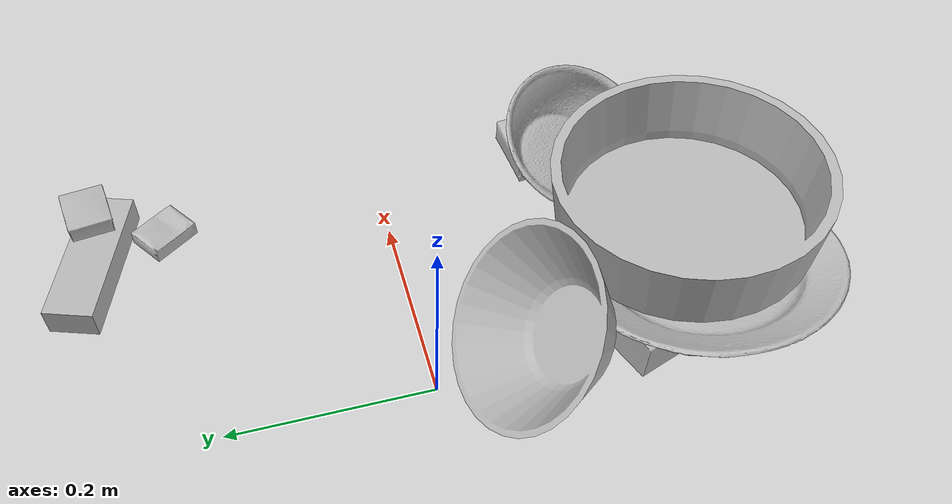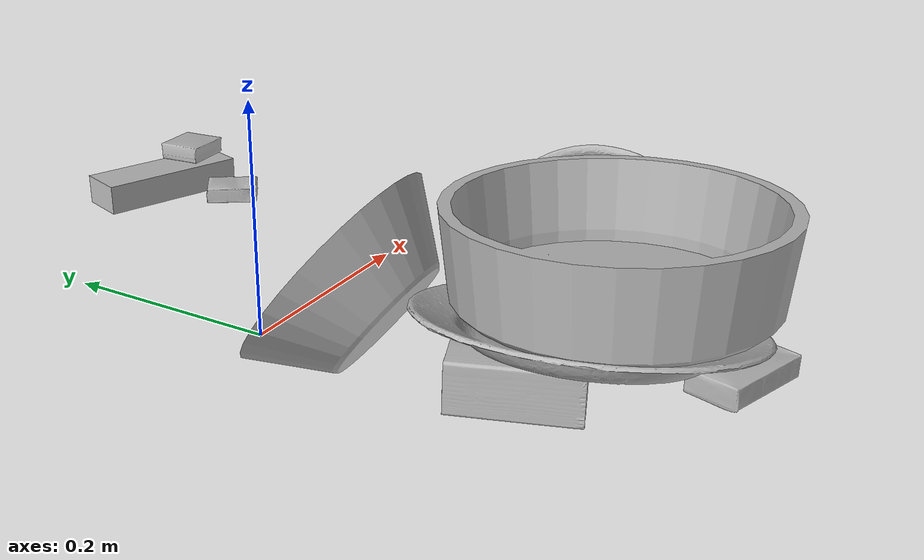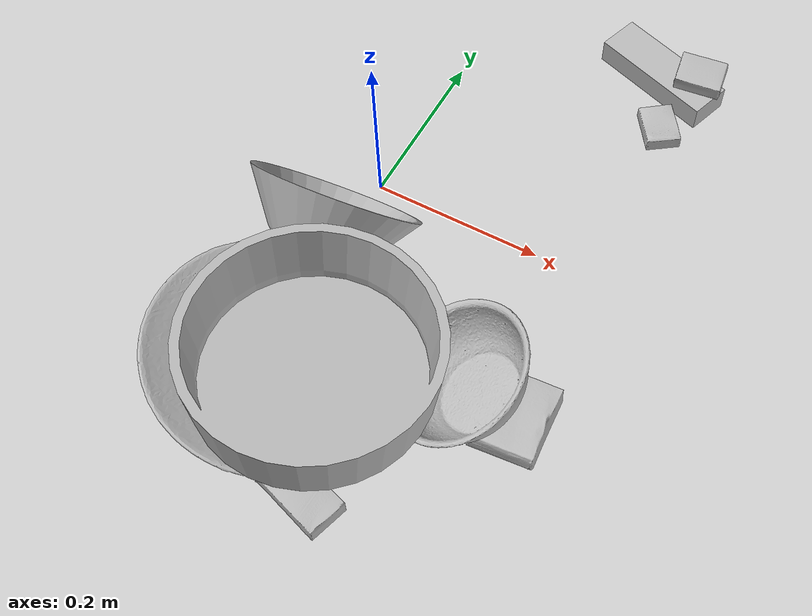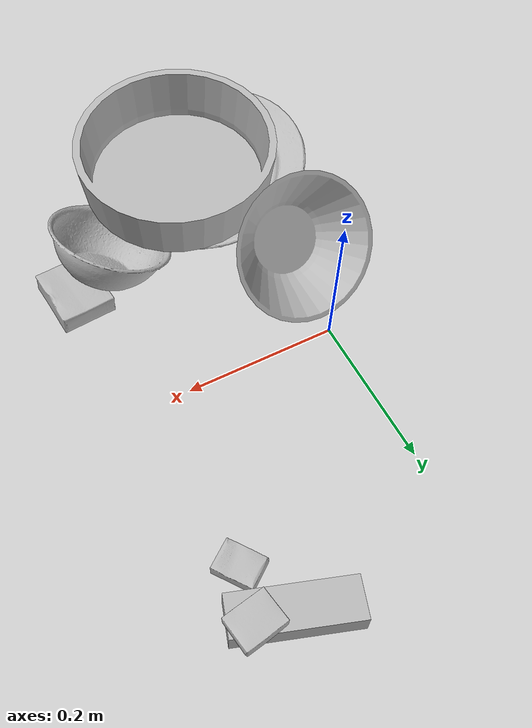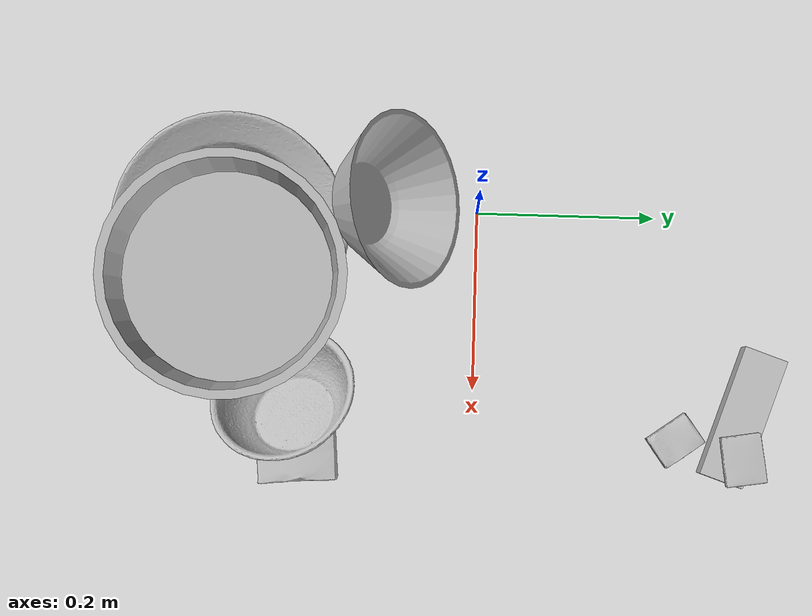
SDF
<sdf version="1.4">
  <world name="default">
    <light name="light1" type="point">
      <pose>0 0 1 0 0 0</pose>
      <diffuse>3 3 3 1</diffuse>
      <specular>3 3 3 1</specular>
    </light>
    <light name="light2" type="point">
      <pose>0 0.5 2 0 0 0</pose>
      <diffuse>1 1 1 1</diffuse>
      <specular>1 1 1 1</specular>
    </light>
    <light name="light3" type="point">
      <pose>0 0.5 2 0 0 0</pose>
      <diffuse>3 3 3 1</diffuse>
      <specular>3 3 3 1</specular>
    </light>
    <scene>
      <ambient>0.7 0.7 0.7</ambient>
    </scene>
    <model name="box1">
      <link name="link_box1">
        <collision name="default">
          <geometry>
            <mesh>
              <uri>model://jenga/collision_meshes/collision.obj</uri>
              <scale>1.0 1.0 1.0</scale>
            </mesh>
          </geometry>
          <surface>
            <friction>
              <ode>
                <mu>0.5</mu>
                <mu2>0.5</mu2>
              </ode>
            </friction>
          <contact>
        <ode>
            <max_vel>0</max_vel>
            <min_depth>0.0001</min_depth>
            <kp>1e8</kp>
        </ode>
    </contact></surface>
        </collision>
        <visual name="default">
          <geometry>
            <mesh>
              <uri>model://jenga/visual_meshes/visual.dae</uri>
              <scale>1.0 1.0 1.0</scale>
            </mesh>
          </geometry>
        </visual>
        <inertial>
          <mass>0.24226053059101105</mass>
          <pose>-2.502855807051674e-07 -0.0001025000965455547 -4.092339804628864e-05 0.0 -7.34215461761844e-07 0.0</pose>
          <inertia>
            <ixx>6.703936e-05</ixx>
            <iyy>0.0004542569</iyy>
            <izz>0.00048495785</izz>
            <ixy>0</ixy>
            <ixz>0</ixz>
            <iyz>0</iyz>
          </inertia>
        </inertial>
      </link>
      <pose>0.2221568375825882 0.30163124203681946 0.015000000596046448 2.8490123341133105e-07 -3.909524180901071e-08 2.812012523986681</pose>
    </model>
    <model name="box11">
      <link name="link_box11">
        <collision name="default">
          <geometry>
            <mesh>
              <uri>model://sugar_box/collision_meshes/collision.obj</uri>
              <scale>0.5 0.5 0.5</scale>
            </mesh>
          </geometry>
          <surface>
            <friction>
              <ode>
                <mu>0.5</mu>
                <mu2>0.5</mu2>
              </ode>
            </friction>
          <contact>
        <ode>
            <max_vel>0</max_vel>
            <min_depth>0.0001</min_depth>
            <kp>1e8</kp>
        </ode>
    </contact></surface>
        </collision>
        <visual name="default">
          <geometry>
            <mesh>
              <uri>model://sugar_box/visual_meshes/visual.dae</uri>
              <scale>0.5 0.5 0.5</scale>
            </mesh>
          </geometry>
        </visual>
        <inertial>
          <mass>0.06204606965184212</mass>
          <pose>0.0005171863595023751 1.9245549992774613e-05 -0.00018182402709499002 -0.0004046263588767038 0.0010506634057764815 0.0026153785560837986</pose>
          <inertia>
            <ixx>1.2924152e-05</ixx>
            <iyy>4.1773517e-05</iyy>
            <izz>5.0007893e-05</izz>
            <ixy>0</ixy>
            <ixz>0</ixz>
            <iyz>0</iyz>
          </inertia>
        </inertial>
      </link>
      <pose>0.12044288218021393 -0.3656235635280609 0.011399298906326294 0.0007750342927615892 -0.023433101040427562 2.8377804268840547</pose>
    </model>
    <model name="box2">
      <link name="link_box2">
        <collision name="default">
          <geometry>
            <mesh>
              <uri>model://gelatin_box/collision_meshes/collision.obj</uri>
              <scale>1.0 1.0 1.0</scale>
            </mesh>
          </geometry>
          <surface>
            <friction>
              <ode>
                <mu>0.5</mu>
                <mu2>0.5</mu2>
              </ode>
            </friction>
          <contact>
        <ode>
            <max_vel>0</max_vel>
            <min_depth>0.0001</min_depth>
            <kp>1e8</kp>
        </ode>
    </contact></surface>
        </collision>
        <visual name="default">
          <geometry>
            <mesh>
              <uri>model://gelatin_box/visual_meshes/visual.dae</uri>
              <scale>1.0 1.0 1.0</scale>
            </mesh>
          </geometry>
        </visual>
        <inertial>
          <mass>0.13706544041633606</mass>
          <pose>0.000431961816502735 0.00011156871187267825 -0.0003640321083366871 -0.0010503719975702072 -0.0047558196187974565 0.01644056506069309</pose>
          <inertia>
            <ixx>9.675702e-05</ixx>
            <iyy>6.911303e-05</iyy>
            <izz>0.00014728573</izz>
            <ixy>0</ixy>
            <ixz>0</ixz>
            <iyz>0</iyz>
          </inertia>
        </inertial>
      </link>
      <pose>0.2713921070098877 -0.19461770355701447 0.015168631449341774 0.005572519958268566 -0.00727137848054153 0.06984810510947906</pose>
    </model>
    <model name="box21">
      <link name="link_box21">
        <collision name="default">
          <geometry>
            <mesh>
              <uri>model://pudding_box/collision_meshes/collision.obj</uri>
              <scale>0.5 0.5 0.5</scale>
            </mesh>
          </geometry>
          <surface>
            <friction>
              <ode>
                <mu>0.5</mu>
                <mu2>0.5</mu2>
              </ode>
            </friction>
          <contact>
        <ode>
            <max_vel>0</max_vel>
            <min_depth>0.0001</min_depth>
            <kp>1e8</kp>
        </ode>
    </contact></surface>
        </collision>
        <visual name="default">
          <geometry>
            <mesh>
              <uri>model://pudding_box/visual_meshes/visual.dae</uri>
              <scale>0.5 0.5 0.5</scale>
            </mesh>
          </geometry>
        </visual>
        <inertial>
          <mass>0.041178666055202484</mass>
          <pose>0.00024474109522998333 0.00040339428232982755 -0.00025944141088984907 0.005213101335872514 -0.006603799630434185 0.020079819569992066</pose>
          <inertia>
            <ixx>1.163759e-05</ixx>
            <iyy>7.8298535e-06</iyy>
            <izz>1.7185945e-05</izz>
            <ixy>0</ixy>
            <ixz>0</ixz>
            <iyz>0</iyz>
          </inertia>
        </inertial>
      </link>
      <pose>0.2691934108734131 0.29906171560287476 0.03986290842294693 0.02235187550711626 -0.011387622693555198 1.724311417236799</pose>
    </model>
    <model name="box3">
      <link name="link_box3">
        <collision name="default">
          <geometry>
            <mesh>
              <uri>model://cracker_box/collision_meshes/collision.obj</uri>
              <scale>0.25 0.25 0.25</scale>
            </mesh>
          </geometry>
          <surface>
            <friction>
              <ode>
                <mu>0.5</mu>
                <mu2>0.5</mu2>
              </ode>
            </friction>
          <contact>
        <ode>
            <max_vel>0</max_vel>
            <min_depth>0.0001</min_depth>
            <kp>1e8</kp>
        </ode>
    </contact></surface>
        </collision>
        <visual name="default">
          <geometry>
            <mesh>
              <uri>model://cracker_box/visual_meshes/visual.dae</uri>
              <scale>0.25 0.25 0.25</scale>
            </mesh>
          </geometry>
        </visual>
        <inertial>
          <mass>0.02017100155353546</mass>
          <pose>0.00023660367878619581 6.358561222441494e-05 -0.00042573839891701937 -0.0003162077973682912 -0.011106487737506417 0.0025467945369474112</pose>
          <inertia>
            <ixx>3.2066264e-06</ixx>
            <iyy>5.2947703e-06</iyy>
            <izz>7.556123e-06</izz>
            <ixy>0</ixy>
            <ixz>0</ixz>
            <iyz>0</iyz>
          </inertia>
        </inertial>
      </link>
      <pose>0.25018247961997986 0.22862669825553894 0.009096027351915836 -0.014050510267390655 -0.005016580315702183 2.1882772852511674</pose>
    </model>
    <model name="box31">
      <link name="link_box31">
        <collision name="default">
          <geometry>
            <mesh>
              <uri>model://wood_block/collision_meshes/collision.obj</uri>
              <scale>0.5 0.5 0.5</scale>
            </mesh>
          </geometry>
          <surface>
            <friction>
              <ode>
                <mu>0.5</mu>
                <mu2>0.5</mu2>
              </ode>
            </friction>
          <contact>
        <ode>
            <max_vel>0</max_vel>
            <min_depth>0.0001</min_depth>
            <kp>1e8</kp>
        </ode>
    </contact></surface>
        </collision>
        <visual name="default">
          <geometry>
            <mesh>
              <uri>model://wood_block/visual_meshes/visual.dae</uri>
              <scale>0.5 0.5 0.5</scale>
            </mesh>
          </geometry>
        </visual>
        <inertial>
          <mass>0.1962708830833435</mass>
          <pose>-2.9066577553749084e-06 -0.000285404734313488 0.00013204291462898254 -0.05220969561834339 -0.0051926963065425085 -0.006861379449261536</pose>
          <inertia>
            <ixx>6.566003e-05</ixx>
            <iyy>0.00020742005</iyy>
            <izz>0.00020664421</izz>
            <ixy>0</ixy>
            <ixz>0</ixz>
            <iyz>0</iyz>
          </inertia>
        </inertial>
      </link>
      <pose>0.0010611278703436255 -0.23264211416244507 0.02268892154097557 0.0004109245443428715 0.008823001234941785 -1.2228433305413424</pose>
    </model>
    <model name="plate1">
      <link name="link_plate1">
        <collision name="default">
          <geometry>
            <mesh>
              <uri>model://plate/collision_meshes/collision.obj</uri>
              <scale>1.0 1.0 1.0</scale>
            </mesh>
          </geometry>
          <surface>
            <friction>
              <ode>
                <mu>0.5</mu>
                <mu2>0.5</mu2>
              </ode>
            </friction>
          <contact>
        <ode>
            <max_vel>0</max_vel>
            <min_depth>0.0001</min_depth>
            <kp>1e8</kp>
        </ode>
    </contact></surface>
        </collision>
        <visual name="default">
          <geometry>
            <mesh>
              <uri>model://plate/visual_meshes/visual.dae</uri>
              <scale>1.0 1.0 1.0</scale>
            </mesh>
          </geometry>
        </visual>
        <inertial>
          <mass>0.17345036566257477</mass>
          <pose>-0.0006044625188224018 0.00027825802681036294 -0.0010561991948634386 0.0022187574415082918 -0.0032254973035065115 0.4526175972404713</pose>
          <inertia>
            <ixx>0.00081140426</ixx>
            <iyy>0.0008036436</iyy>
            <izz>0.0015869853</izz>
            <ixy>0</ixy>
            <ixz>0</ixz>
            <iyz>0</iyz>
          </inertia>
        </inertial>
      </link>
      <pose>0.031932491809129715 -0.27135202288627625 0.057620588690042496 -0.24682063505442398 0.03144338308215321 -1.2680902143316517</pose>
    </model>
    <model name="bowl1">
      <link name="link_bowl1">
        <collision name="default">
          <geometry>
            <mesh>
              <uri>model://bowl/collision_meshes/collision.obj</uri>
              <scale>1.0 1.0 1.0</scale>
            </mesh>
          </geometry>
          <surface>
            <friction>
              <ode>
                <mu>0.5</mu>
                <mu2>0.5</mu2>
              </ode>
            </friction>
          <contact>
        <ode>
            <max_vel>0</max_vel>
            <min_depth>0.0001</min_depth>
            <kp>1e8</kp>
        </ode>
    </contact></surface>
        </collision>
        <visual name="default">
          <geometry>
            <mesh>
              <uri>model://bowl/visual_meshes/visual.dae</uri>
              <scale>1.0 1.0 1.0</scale>
            </mesh>
          </geometry>
        </visual>
        <inertial>
          <mass>0.11633910983800888</mass>
          <pose>0.00020445004338398576 -0.0010302083101123571 -0.0008042659610509872 -0.01576420252076368 0.01454664289610389 0.7140315541596068</pose>
          <inertia>
            <ixx>0.0002672402</ixx>
            <iyy>0.000261269</iyy>
            <izz>0.00044958986</izz>
            <ixy>0</ixy>
            <ixz>0</ixz>
            <iyz>0</iyz>
          </inertia>
        </inertial>
      </link>
      <pose>0.2206500917673111 -0.2017076313495636 0.05812408775091171 0.38387723557598125 0.3463954117063421 -1.8570526972999348</pose>
    </model>
    <model name="plate2">
      <link name="link_plate2">
        <collision name="default">
          <geometry>
            <mesh>
              <uri>model://pan_tefal/collision_meshes/collision.obj</uri>
              <scale>1.0 1.0 1.0</scale>
            </mesh>
          </geometry>
          <surface>
            <friction>
              <ode>
                <mu>0.5</mu>
                <mu2>0.5</mu2>
              </ode>
            </friction>
          <contact>
        <ode>
            <max_vel>0</max_vel>
            <min_depth>0.0001</min_depth>
            <kp>1e8</kp>
        </ode>
    </contact></surface>
        </collision>
        <visual name="default">
          <geometry>
            <mesh>
              <uri>model://pan_tefal/visual_meshes/visual.dae</uri>
              <scale>1.0 1.0 1.0</scale>
            </mesh>
          </geometry>
        </visual>
        <inertial>
          <mass>0.6251956820487976</mass>
          <pose>-0.00018002417345996946 3.279016891610809e-05 -0.00851493515074253 0.0008190253681579672 -0.00033013925853852665 -0.331857454583129</pose>
          <inertia>
            <ixx>0.004315697</ixx>
            <iyy>0.00434352</iyy>
            <izz>0.007944365</izz>
            <ixy>0</ixy>
            <ixz>0</ixz>
            <iyz>0</iyz>
          </inertia>
        </inertial>
      </link>
      <pose>0.08564070612192154 -0.269827663898468 0.10264360159635544 0.0448945895625416 0.022509710601200012 2.033681717380076</pose>
    </model>
    <model name="bowl2">
      <link name="link_bowl2">
        <collision name="default">
          <geometry>
            <mesh>
              <uri>model://bowl_a/collision_meshes/collision.obj</uri>
              <scale>1.0 1.0 1.0</scale>
            </mesh>
          </geometry>
          <surface>
            <friction>
              <ode>
                <mu>0.5</mu>
                <mu2>0.5</mu2>
              </ode>
            </friction>
          <contact>
        <ode>
            <max_vel>0</max_vel>
            <min_depth>0.0001</min_depth>
            <kp>1e8</kp>
        </ode>
    </contact></surface>
        </collision>
        <visual name="default">
          <geometry>
            <mesh>
              <uri>model://bowl_a/visual_meshes/visual.dae</uri>
              <scale>1.0 1.0 1.0</scale>
            </mesh>
          </geometry>
        </visual>
        <inertial>
          <mass>0.3434441387653351</mass>
          <pose>0.0002786742115858942 4.731103399535641e-05 -0.0013765294570475817 -0.000980532155977885 -0.0010938290454026757 -0.191241060811112</pose>
          <inertia>
            <ixx>0.0009778013</ixx>
            <iyy>0.0009838042</iyy>
            <izz>0.0017390571</izz>
            <ixy>0</ixy>
            <ixz>0</ixz>
            <iyz>0</iyz>
          </inertia>
        </inertial>
      </link>
      <pose>-0.003471274860203266 -0.10202762484550476 0.0637095719575882 0.8263152177116887 -0.525021907470086 -2.657706863030784</pose>
    </model>
  <physics type="ode">
      <max_contacts>50</max_contacts>
      <ode>
        <solver>
          <type>quick</type>
          <iters>75</iters>
        </solver>
        <constraints>
          <contact_max_correcting_vel>0</contact_max_correcting_vel>
          <contact_surface_layer>0</contact_surface_layer>
        </constraints>
      </ode>
    </physics></world>
</sdf>
